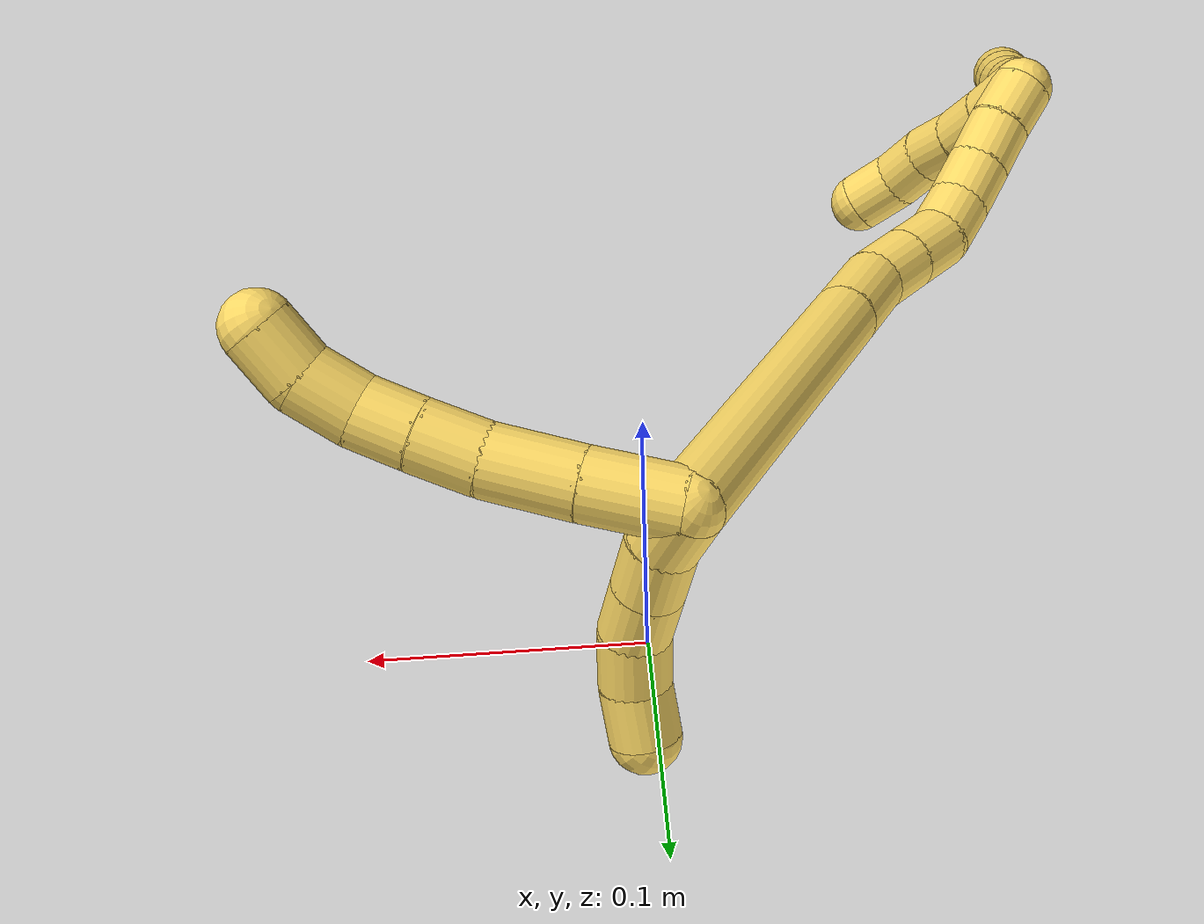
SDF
<sdf version="1.7">
 <world name="default">
  <model name="5">
   <static>0</static>
   <link name="5">
    <collision name="collision-cylinder-e_1_2_8">
     <pose>0.013615 0.005097 -0.008481 -2.60042 0.942341 -2.14438</pose>
     <geometry><cylinder><radius>0.0125</radius><length>0.033662</length></cylinder></geometry>
     <surface>
      <friction><ode><mu>1.16</mu><mu2>1.16</mu2><slip1>0</slip1><slip2>0</slip2></ode></friction>
      <contact><ode><kp>1e+06</kp><kd>1</kd><max_vel>0</max_vel><min_depth>0.001</min_depth></ode></contact>
     </surface>
    </collision>
    <visual name="visual-cylinder-e_1_2_8">
     <pose>0.013615 0.005097 -0.008481 -2.60042 0.942341 -2.14438</pose>
     <geometry><cylinder><radius>0.0125</radius><length>0.033662</length></cylinder></geometry>
     <material><ambient>1 0.858824 0.4 1</ambient></material>
    </visual>
    <collision name="collision-cylinder-e_2_8_9">
     <pose>0.040364 0.01455 -0.024837 -2.63635 0.970062 -2.23068</pose>
     <geometry><cylinder><radius>0.0125</radius><length>0.031841</length></cylinder></geometry>
     <surface>
      <friction><ode><mu>1.16</mu><mu2>1.16</mu2><slip1>0</slip1><slip2>0</slip2></ode></friction>
      <contact><ode><kp>1e+06</kp><kd>1</kd><max_vel>0</max_vel><min_depth>0.001</min_depth></ode></contact>
     </surface>
    </collision>
    <visual name="visual-cylinder-e_2_8_9">
     <pose>0.040364 0.01455 -0.024837 -2.63635 0.970062 -2.23068</pose>
     <geometry><cylinder><radius>0.0125</radius><length>0.031841</length></cylinder></geometry>
     <material><ambient>1 0.858824 0.4 1</ambient></material>
    </visual>
    <collision name="collision-cylinder-e_3_9_10">
     <pose>0.063683 0.021573 -0.037156 -2.60109 1.10003 -2.29285</pose>
     <geometry><cylinder><radius>0.0125</radius><length>0.022859</length></cylinder></geometry>
     <surface>
      <friction><ode><mu>1.16</mu><mu2>1.16</mu2><slip1>0</slip1><slip2>0</slip2></ode></friction>
      <contact><ode><kp>1e+06</kp><kd>1</kd><max_vel>0</max_vel><min_depth>0.001</min_depth></ode></contact>
     </surface>
    </collision>
    <visual name="visual-cylinder-e_3_9_10">
     <pose>0.063683 0.021573 -0.037156 -2.60109 1.10003 -2.29285</pose>
     <geometry><cylinder><radius>0.0125</radius><length>0.022859</length></cylinder></geometry>
     <material><ambient>1 0.858824 0.4 1</ambient></material>
    </visual>
    <collision name="collision-cylinder-e_4_10_11">
     <pose>0.08298 0.026187 -0.045631 -2.69162 1.11422 -2.43743</pose>
     <geometry><cylinder><radius>0.0125</radius><length>0.020302</length></cylinder></geometry>
     <surface>
      <friction><ode><mu>1.16</mu><mu2>1.16</mu2><slip1>0</slip1><slip2>0</slip2></ode></friction>
      <contact><ode><kp>1e+06</kp><kd>1</kd><max_vel>0</max_vel><min_depth>0.001</min_depth></ode></contact>
     </surface>
    </collision>
    <visual name="visual-cylinder-e_4_10_11">
     <pose>0.08298 0.026187 -0.045631 -2.69162 1.11422 -2.43743</pose>
     <geometry><cylinder><radius>0.0125</radius><length>0.020302</length></cylinder></geometry>
     <material><ambient>1 0.858824 0.4 1</ambient></material>
    </visual>
    <collision name="collision-cylinder-e_5_11_12">
     <pose>0.102258 0.030407 -0.051074 -2.12698 1.31337 -1.89209</pose>
     <geometry><cylinder><radius>0.0125</radius><length>0.021027</length></cylinder></geometry>
     <surface>
      <friction><ode><mu>1.16</mu><mu2>1.16</mu2><slip1>0</slip1><slip2>0</slip2></ode></friction>
      <contact><ode><kp>1e+06</kp><kd>1</kd><max_vel>0</max_vel><min_depth>0.001</min_depth></ode></contact>
     </surface>
    </collision>
    <visual name="visual-cylinder-e_5_11_12">
     <pose>0.102258 0.030407 -0.051074 -2.12698 1.31337 -1.89209</pose>
     <geometry><cylinder><radius>0.0125</radius><length>0.021027</length></cylinder></geometry>
     <material><ambient>1 0.858824 0.4 1</ambient></material>
    </visual>
    <collision name="collision-cylinder-e_6_12_6">
     <pose>0.122509 0.032649 -0.051286 0.026008 1.45213 0.023091</pose>
     <geometry><cylinder><radius>0.0125</radius><length>0.020309</length></cylinder></geometry>
     <surface>
      <friction><ode><mu>1.16</mu><mu2>1.16</mu2><slip1>0</slip1><slip2>0</slip2></ode></friction>
      <contact><ode><kp>1e+06</kp><kd>1</kd><max_vel>0</max_vel><min_depth>0.001</min_depth></ode></contact>
     </surface>
    </collision>
    <visual name="visual-cylinder-e_6_12_6">
     <pose>0.122509 0.032649 -0.051286 0.026008 1.45213 0.023091</pose>
     <geometry><cylinder><radius>0.0125</radius><length>0.020309</length></cylinder></geometry>
     <material><ambient>1 0.858824 0.4 1</ambient></material>
    </visual>
    <collision name="collision-cylinder-e_1_2_13">
     <pose>-0.002125 0.001289 -0.009686 -3.00926 -0.214135 2.03664</pose>
     <geometry><cylinder><radius>0.0125</radius><length>0.02</length></cylinder></geometry>
     <surface>
      <friction><ode><mu>1.16</mu><mu2>1.16</mu2><slip1>0</slip1><slip2>0</slip2></ode></friction>
      <contact><ode><kp>1e+06</kp><kd>1</kd><max_vel>0</max_vel><min_depth>0.001</min_depth></ode></contact>
     </surface>
    </collision>
    <visual name="visual-cylinder-e_1_2_13">
     <pose>-0.002125 0.001289 -0.009686 -3.00926 -0.214135 2.03664</pose>
     <geometry><cylinder><radius>0.0125</radius><length>0.02</length></cylinder></geometry>
     <material><ambient>1 0.858824 0.4 1</ambient></material>
    </visual>
    <collision name="collision-cylinder-e_2_13_14">
     <pose>-0.008573 0.004261 -0.028231 -2.95391 -0.446997 2.35643</pose>
     <geometry><cylinder><radius>0.0125</radius><length>0.02</length></cylinder></geometry>
     <surface>
      <friction><ode><mu>1.16</mu><mu2>1.16</mu2><slip1>0</slip1><slip2>0</slip2></ode></friction>
      <contact><ode><kp>1e+06</kp><kd>1</kd><max_vel>0</max_vel><min_depth>0.001</min_depth></ode></contact>
     </surface>
    </collision>
    <visual name="visual-cylinder-e_2_13_14">
     <pose>-0.008573 0.004261 -0.028231 -2.95391 -0.446997 2.35643</pose>
     <geometry><cylinder><radius>0.0125</radius><length>0.02</length></cylinder></geometry>
     <material><ambient>1 0.858824 0.4 1</ambient></material>
    </visual>
    <collision name="collision-cylinder-e_3_14_15">
     <pose>-0.017219 0.007628 -0.045949 -2.95368 -0.447158 2.35581</pose>
     <geometry><cylinder><radius>0.0125</radius><length>0.02</length></cylinder></geometry>
     <surface>
      <friction><ode><mu>1.16</mu><mu2>1.16</mu2><slip1>0</slip1><slip2>0</slip2></ode></friction>
      <contact><ode><kp>1e+06</kp><kd>1</kd><max_vel>0</max_vel><min_depth>0.001</min_depth></ode></contact>
     </surface>
    </collision>
    <visual name="visual-cylinder-e_3_14_15">
     <pose>-0.017219 0.007628 -0.045949 -2.95368 -0.447158 2.35581</pose>
     <geometry><cylinder><radius>0.0125</radius><length>0.02</length></cylinder></geometry>
     <material><ambient>1 0.858824 0.4 1</ambient></material>
    </visual>
    <collision name="collision-cylinder-e_4_15_16">
     <pose>-0.028279 0.01135 -0.061911 -2.86228 -0.739054 2.4453</pose>
     <geometry><cylinder><radius>0.0125</radius><length>0.02</length></cylinder></geometry>
     <surface>
      <friction><ode><mu>1.16</mu><mu2>1.16</mu2><slip1>0</slip1><slip2>0</slip2></ode></friction>
      <contact><ode><kp>1e+06</kp><kd>1</kd><max_vel>0</max_vel><min_depth>0.001</min_depth></ode></contact>
     </surface>
    </collision>
    <visual name="visual-cylinder-e_4_15_16">
     <pose>-0.028279 0.01135 -0.061911 -2.86228 -0.739054 2.4453</pose>
     <geometry><cylinder><radius>0.0125</radius><length>0.02</length></cylinder></geometry>
     <material><ambient>1 0.858824 0.4 1</ambient></material>
    </visual>
    <collision name="collision-cylinder-e_5_16_5">
     <pose>-0.043136 0.016045 -0.074212 -2.66892 -0.947649 2.26342</pose>
     <geometry><cylinder><radius>0.0125</radius><length>0.02</length></cylinder></geometry>
     <surface>
      <friction><ode><mu>1.16</mu><mu2>1.16</mu2><slip1>0</slip1><slip2>0</slip2></ode></friction>
      <contact><ode><kp>1e+06</kp><kd>1</kd><max_vel>0</max_vel><min_depth>0.001</min_depth></ode></contact>
     </surface>
    </collision>
    <visual name="visual-cylinder-e_5_16_5">
     <pose>-0.043136 0.016045 -0.074212 -2.66892 -0.947649 2.26342</pose>
     <geometry><cylinder><radius>0.0125</radius><length>0.02</length></cylinder></geometry>
     <material><ambient>1 0.858824 0.4 1</ambient></material>
    </visual>
    <collision name="collision-cylinder-e_1_2_17">
     <pose>-0.002019 -0.069784 -0.015676 1.79177 -0.028226 -0.035268</pose>
     <geometry><cylinder><radius>0.0125</radius><length>0.143104</length></cylinder></geometry>
     <surface>
      <friction><ode><mu>1.16</mu><mu2>1.16</mu2><slip1>0</slip1><slip2>0</slip2></ode></friction>
      <contact><ode><kp>1e+06</kp><kd>1</kd><max_vel>0</max_vel><min_depth>0.001</min_depth></ode></contact>
     </surface>
    </collision>
    <visual name="visual-cylinder-e_1_2_17">
     <pose>-0.002019 -0.069784 -0.015676 1.79177 -0.028226 -0.035268</pose>
     <geometry><cylinder><radius>0.0125</radius><length>0.143104</length></cylinder></geometry>
     <material><ambient>1 0.858824 0.4 1</ambient></material>
    </visual>
    <collision name="collision-cylinder-e_2_17_18">
     <pose>-0.004447 -0.15558 -0.034984 1.79385 -0.024872 -0.031144</pose>
     <geometry><cylinder><radius>0.0125</radius><length>0.032845</length></cylinder></geometry>
     <surface>
      <friction><ode><mu>1.16</mu><mu2>1.16</mu2><slip1>0</slip1><slip2>0</slip2></ode></friction>
      <contact><ode><kp>1e+06</kp><kd>1</kd><max_vel>0</max_vel><min_depth>0.001</min_depth></ode></contact>
     </surface>
    </collision>
    <visual name="visual-cylinder-e_2_17_18">
     <pose>-0.004447 -0.15558 -0.034984 1.79385 -0.024872 -0.031144</pose>
     <geometry><cylinder><radius>0.0125</radius><length>0.032845</length></cylinder></geometry>
     <material><ambient>1 0.858824 0.4 1</ambient></material>
    </visual>
    <collision name="collision-cylinder-e_3_18_19">
     <pose>-0.006855 -0.1823 -0.038158 1.52804 -0.184376 -0.176697</pose>
     <geometry><cylinder><radius>0.0125</radius><length>0.021809</length></cylinder></geometry>
     <surface>
      <friction><ode><mu>1.16</mu><mu2>1.16</mu2><slip1>0</slip1><slip2>0</slip2></ode></friction>
      <contact><ode><kp>1e+06</kp><kd>1</kd><max_vel>0</max_vel><min_depth>0.001</min_depth></ode></contact>
     </surface>
    </collision>
    <visual name="visual-cylinder-e_3_18_19">
     <pose>-0.006855 -0.1823 -0.038158 1.52804 -0.184376 -0.176697</pose>
     <geometry><cylinder><radius>0.0125</radius><length>0.021809</length></cylinder></geometry>
     <material><ambient>1 0.858824 0.4 1</ambient></material>
    </visual>
    <collision name="collision-cylinder-e_4_19_20">
     <pose>-0.010948 -0.203792 -0.037155 1.52033 -0.191576 -0.182197</pose>
     <geometry><cylinder><radius>0.0125</radius><length>0.021994</length></cylinder></geometry>
     <surface>
      <friction><ode><mu>1.16</mu><mu2>1.16</mu2><slip1>0</slip1><slip2>0</slip2></ode></friction>
      <contact><ode><kp>1e+06</kp><kd>1</kd><max_vel>0</max_vel><min_depth>0.001</min_depth></ode></contact>
     </surface>
    </collision>
    <visual name="visual-cylinder-e_4_19_20">
     <pose>-0.010948 -0.203792 -0.037155 1.52033 -0.191576 -0.182197</pose>
     <geometry><cylinder><radius>0.0125</radius><length>0.021994</length></cylinder></geometry>
     <material><ambient>1 0.858824 0.4 1</ambient></material>
    </visual>
    <collision name="collision-cylinder-e_5_20_21">
     <pose>-0.011693 -0.224551 -0.035617 1.47153 0.133675 0.121056</pose>
     <geometry><cylinder><radius>0.0125</radius><length>0.020232</length></cylinder></geometry>
     <surface>
      <friction><ode><mu>1.16</mu><mu2>1.16</mu2><slip1>0</slip1><slip2>0</slip2></ode></friction>
      <contact><ode><kp>1e+06</kp><kd>1</kd><max_vel>0</max_vel><min_depth>0.001</min_depth></ode></contact>
     </surface>
    </collision>
    <visual name="visual-cylinder-e_5_20_21">
     <pose>-0.011693 -0.224551 -0.035617 1.47153 0.133675 0.121056</pose>
     <geometry><cylinder><radius>0.0125</radius><length>0.020232</length></cylinder></geometry>
     <material><ambient>1 0.858824 0.4 1</ambient></material>
    </visual>
    <collision name="collision-cylinder-e_6_21_22">
     <pose>-0.007988 -0.243674 -0.031322 1.22452 0.237821 0.167417</pose>
     <geometry><cylinder><radius>0.0125</radius><length>0.020012</length></cylinder></geometry>
     <surface>
      <friction><ode><mu>1.16</mu><mu2>1.16</mu2><slip1>0</slip1><slip2>0</slip2></ode></friction>
      <contact><ode><kp>1e+06</kp><kd>1</kd><max_vel>0</max_vel><min_depth>0.001</min_depth></ode></contact>
     </surface>
    </collision>
    <visual name="visual-cylinder-e_6_21_22">
     <pose>-0.007988 -0.243674 -0.031322 1.22452 0.237821 0.167417</pose>
     <geometry><cylinder><radius>0.0125</radius><length>0.020012</length></cylinder></geometry>
     <material><ambient>1 0.858824 0.4 1</ambient></material>
    </visual>
    <collision name="collision-cylinder-e_7_22_23">
     <pose>-0.003012 -0.261739 -0.02433 1.17826 0.264901 0.177606</pose>
     <geometry><cylinder><radius>0.0125</radius><length>0.020002</length></cylinder></geometry>
     <surface>
      <friction><ode><mu>1.16</mu><mu2>1.16</mu2><slip1>0</slip1><slip2>0</slip2></ode></friction>
      <contact><ode><kp>1e+06</kp><kd>1</kd><max_vel>0</max_vel><min_depth>0.001</min_depth></ode></contact>
     </surface>
    </collision>
    <visual name="visual-cylinder-e_7_22_23">
     <pose>-0.003012 -0.261739 -0.02433 1.17826 0.264901 0.177606</pose>
     <geometry><cylinder><radius>0.0125</radius><length>0.020002</length></cylinder></geometry>
     <material><ambient>1 0.858824 0.4 1</ambient></material>
    </visual>
    <collision name="collision-cylinder-e_8_23_1">
     <pose>0.001535 -0.279805 -0.017085 1.20033 0.194087 0.133051</pose>
     <geometry><cylinder><radius>0.0125</radius><length>0.020002</length></cylinder></geometry>
     <surface>
      <friction><ode><mu>1.16</mu><mu2>1.16</mu2><slip1>0</slip1><slip2>0</slip2></ode></friction>
      <contact><ode><kp>1e+06</kp><kd>1</kd><max_vel>0</max_vel><min_depth>0.001</min_depth></ode></contact>
     </surface>
    </collision>
    <visual name="visual-cylinder-e_8_23_1">
     <pose>0.001535 -0.279805 -0.017085 1.20033 0.194087 0.133051</pose>
     <geometry><cylinder><radius>0.0125</radius><length>0.020002</length></cylinder></geometry>
     <material><ambient>1 0.858824 0.4 1</ambient></material>
    </visual>
    <collision name="collision-cylinder-e_1_1_24">
     <pose>0.003704 -0.296478 -0.020113 2.28932 0.024041 0.052949</pose>
     <geometry><cylinder><radius>0.0125</radius><length>0.02</length></cylinder></geometry>
     <surface>
      <friction><ode><mu>1.16</mu><mu2>1.16</mu2><slip1>0</slip1><slip2>0</slip2></ode></friction>
      <contact><ode><kp>1e+06</kp><kd>1</kd><max_vel>0</max_vel><min_depth>0.001</min_depth></ode></contact>
     </surface>
    </collision>
    <visual name="visual-cylinder-e_1_1_24">
     <pose>0.003704 -0.296478 -0.020113 2.28932 0.024041 0.052949</pose>
     <geometry><cylinder><radius>0.0125</radius><length>0.02</length></cylinder></geometry>
     <material><ambient>1 0.858824 0.4 1</ambient></material>
    </visual>
    <collision name="collision-cylinder-e_2_24_25">
     <pose>0.004573 -0.311657 -0.033099 2.26772 0.062838 0.134387</pose>
     <geometry><cylinder><radius>0.0125</radius><length>0.02</length></cylinder></geometry>
     <surface>
      <friction><ode><mu>1.16</mu><mu2>1.16</mu2><slip1>0</slip1><slip2>0</slip2></ode></friction>
      <contact><ode><kp>1e+06</kp><kd>1</kd><max_vel>0</max_vel><min_depth>0.001</min_depth></ode></contact>
     </surface>
    </collision>
    <visual name="visual-cylinder-e_2_24_25">
     <pose>0.004573 -0.311657 -0.033099 2.26772 0.062838 0.134387</pose>
     <geometry><cylinder><radius>0.0125</radius><length>0.02</length></cylinder></geometry>
     <material><ambient>1 0.858824 0.4 1</ambient></material>
    </visual>
    <collision name="collision-cylinder-e_3_25_26">
     <pose>0.005847 -0.32752 -0.045177 2.1753 0.064704 0.123221</pose>
     <geometry><cylinder><radius>0.0125</radius><length>0.02</length></cylinder></geometry>
     <surface>
      <friction><ode><mu>1.16</mu><mu2>1.16</mu2><slip1>0</slip1><slip2>0</slip2></ode></friction>
      <contact><ode><kp>1e+06</kp><kd>1</kd><max_vel>0</max_vel><min_depth>0.001</min_depth></ode></contact>
     </surface>
    </collision>
    <visual name="visual-cylinder-e_3_25_26">
     <pose>0.005847 -0.32752 -0.045177 2.1753 0.064704 0.123221</pose>
     <geometry><cylinder><radius>0.0125</radius><length>0.02</length></cylinder></geometry>
     <material><ambient>1 0.858824 0.4 1</ambient></material>
    </visual>
    <collision name="collision-cylinder-e_4_26_27">
     <pose>0.006812 -0.343879 -0.056637 2.18843 0.031833 0.061645</pose>
     <geometry><cylinder><radius>0.0125</radius><length>0.02</length></cylinder></geometry>
     <surface>
      <friction><ode><mu>1.16</mu><mu2>1.16</mu2><slip1>0</slip1><slip2>0</slip2></ode></friction>
      <contact><ode><kp>1e+06</kp><kd>1</kd><max_vel>0</max_vel><min_depth>0.001</min_depth></ode></contact>
     </surface>
    </collision>
    <visual name="visual-cylinder-e_4_26_27">
     <pose>0.006812 -0.343879 -0.056637 2.18843 0.031833 0.061645</pose>
     <geometry><cylinder><radius>0.0125</radius><length>0.02</length></cylinder></geometry>
     <material><ambient>1 0.858824 0.4 1</ambient></material>
    </visual>
    <collision name="collision-cylinder-e_5_27_4">
     <pose>0.005548 -0.359716 -0.06862 2.24903 -0.158884 -0.32974</pose>
     <geometry><cylinder><radius>0.0125</radius><length>0.02</length></cylinder></geometry>
     <surface>
      <friction><ode><mu>1.16</mu><mu2>1.16</mu2><slip1>0</slip1><slip2>0</slip2></ode></friction>
      <contact><ode><kp>1e+06</kp><kd>1</kd><max_vel>0</max_vel><min_depth>0.001</min_depth></ode></contact>
     </surface>
    </collision>
    <visual name="visual-cylinder-e_5_27_4">
     <pose>0.005548 -0.359716 -0.06862 2.24903 -0.158884 -0.32974</pose>
     <geometry><cylinder><radius>0.0125</radius><length>0.02</length></cylinder></geometry>
     <material><ambient>1 0.858824 0.4 1</ambient></material>
    </visual>
    <collision name="collision-cylinder-e_1_1_28">
     <pose>0.003535 -0.28842 -0.023517 -3.0883 0.007093 -0.264572</pose>
     <geometry><cylinder><radius>0.0125</radius><length>0.02</length></cylinder></geometry>
     <surface>
      <friction><ode><mu>1.16</mu><mu2>1.16</mu2><slip1>0</slip1><slip2>0</slip2></ode></friction>
      <contact><ode><kp>1e+06</kp><kd>1</kd><max_vel>0</max_vel><min_depth>0.001</min_depth></ode></contact>
     </surface>
    </collision>
    <visual name="visual-cylinder-e_1_1_28">
     <pose>0.003535 -0.28842 -0.023517 -3.0883 0.007093 -0.264572</pose>
     <geometry><cylinder><radius>0.0125</radius><length>0.02</length></cylinder></geometry>
     <material><ambient>1 0.858824 0.4 1</ambient></material>
    </visual>
    <collision name="collision-cylinder-e_2_28_29">
     <pose>0.003981 -0.28801 -0.043495 3.12929 0.03751 2.50796</pose>
     <geometry><cylinder><radius>0.0125</radius><length>0.02</length></cylinder></geometry>
     <surface>
      <friction><ode><mu>1.16</mu><mu2>1.16</mu2><slip1>0</slip1><slip2>0</slip2></ode></friction>
      <contact><ode><kp>1e+06</kp><kd>1</kd><max_vel>0</max_vel><min_depth>0.001</min_depth></ode></contact>
     </surface>
    </collision>
    <visual name="visual-cylinder-e_2_28_29">
     <pose>0.003981 -0.28801 -0.043495 3.12929 0.03751 2.50796</pose>
     <geometry><cylinder><radius>0.0125</radius><length>0.02</length></cylinder></geometry>
     <material><ambient>1 0.858824 0.4 1</ambient></material>
    </visual>
    <collision name="collision-cylinder-e_3_29_30">
     <pose>0.005874 -0.288787 -0.06335 3.07531 0.152408 2.32229</pose>
     <geometry><cylinder><radius>0.0125</radius><length>0.02</length></cylinder></geometry>
     <surface>
      <friction><ode><mu>1.16</mu><mu2>1.16</mu2><slip1>0</slip1><slip2>0</slip2></ode></friction>
      <contact><ode><kp>1e+06</kp><kd>1</kd><max_vel>0</max_vel><min_depth>0.001</min_depth></ode></contact>
     </surface>
    </collision>
    <visual name="visual-cylinder-e_3_29_30">
     <pose>0.005874 -0.288787 -0.06335 3.07531 0.152408 2.32229</pose>
     <geometry><cylinder><radius>0.0125</radius><length>0.02</length></cylinder></geometry>
     <material><ambient>1 0.858824 0.4 1</ambient></material>
    </visual>
    <collision name="collision-cylinder-e_4_30_31">
     <pose>0.007693 -0.288231 -0.083134 -3.0201 0.030048 -0.484396</pose>
     <geometry><cylinder><radius>0.0125</radius><length>0.02</length></cylinder></geometry>
     <surface>
      <friction><ode><mu>1.16</mu><mu2>1.16</mu2><slip1>0</slip1><slip2>0</slip2></ode></friction>
      <contact><ode><kp>1e+06</kp><kd>1</kd><max_vel>0</max_vel><min_depth>0.001</min_depth></ode></contact>
     </surface>
    </collision>
    <visual name="visual-cylinder-e_4_30_31">
     <pose>0.007693 -0.288231 -0.083134 -3.0201 0.030048 -0.484396</pose>
     <geometry><cylinder><radius>0.0125</radius><length>0.02</length></cylinder></geometry>
     <material><ambient>1 0.858824 0.4 1</ambient></material>
    </visual>
    <collision name="collision-cylinder-e_5_31_3">
     <pose>0.009794 -0.283016 -0.102041 -2.72244 0.181116 -0.807003</pose>
     <geometry><cylinder><radius>0.0125</radius><length>0.02</length></cylinder></geometry>
     <surface>
      <friction><ode><mu>1.16</mu><mu2>1.16</mu2><slip1>0</slip1><slip2>0</slip2></ode></friction>
      <contact><ode><kp>1e+06</kp><kd>1</kd><max_vel>0</max_vel><min_depth>0.001</min_depth></ode></contact>
     </surface>
    </collision>
    <visual name="visual-cylinder-e_5_31_3">
     <pose>0.009794 -0.283016 -0.102041 -2.72244 0.181116 -0.807003</pose>
     <geometry><cylinder><radius>0.0125</radius><length>0.02</length></cylinder></geometry>
     <material><ambient>1 0.858824 0.4 1</ambient></material>
    </visual>
    <collision name="collision-sphere-3">
     <pose>0.011596 -0.279013 -0.111026 0 -0 0</pose>
     <geometry><sphere><radius>0.0125</radius></sphere></geometry>
     <surface>
      <friction><ode><mu>1.16</mu><mu2>1.16</mu2><slip1>0</slip1><slip2>0</slip2></ode></friction>
      <contact><ode><kp>1e+06</kp><kd>1</kd><max_vel>0</max_vel><min_depth>0.001</min_depth></ode></contact>
     </surface>
    </collision>
    <visual name="visual-sphere-3">
     <pose>0.011596 -0.279013 -0.111026 0 -0 0</pose>
     <geometry><sphere><radius>0.0125</radius></sphere></geometry>
     <material><ambient>1 0.858824 0.4 1</ambient></material>
    </visual>
    <collision name="collision-sphere-31">
     <pose>0.007993 -0.287019 -0.093056 0 -0 0</pose>
     <geometry><sphere><radius>0.0125</radius></sphere></geometry>
     <surface>
      <friction><ode><mu>1.16</mu><mu2>1.16</mu2><slip1>0</slip1><slip2>0</slip2></ode></friction>
      <contact><ode><kp>1e+06</kp><kd>1</kd><max_vel>0</max_vel><min_depth>0.001</min_depth></ode></contact>
     </surface>
    </collision>
    <visual name="visual-sphere-31">
     <pose>0.007993 -0.287019 -0.093056 0 -0 0</pose>
     <geometry><sphere><radius>0.0125</radius></sphere></geometry>
     <material><ambient>1 0.858824 0.4 1</ambient></material>
    </visual>
    <collision name="collision-sphere-30">
     <pose>0.007392 -0.289442 -0.073212 0 -0 0</pose>
     <geometry><sphere><radius>0.0125</radius></sphere></geometry>
     <surface>
      <friction><ode><mu>1.16</mu><mu2>1.16</mu2><slip1>0</slip1><slip2>0</slip2></ode></friction>
      <contact><ode><kp>1e+06</kp><kd>1</kd><max_vel>0</max_vel><min_depth>0.001</min_depth></ode></contact>
     </surface>
    </collision>
    <visual name="visual-sphere-30">
     <pose>0.007392 -0.289442 -0.073212 0 -0 0</pose>
     <geometry><sphere><radius>0.0125</radius></sphere></geometry>
     <material><ambient>1 0.858824 0.4 1</ambient></material>
    </visual>
    <collision name="collision-sphere-29">
     <pose>0.004356 -0.288133 -0.053487 0 -0 0</pose>
     <geometry><sphere><radius>0.0125</radius></sphere></geometry>
     <surface>
      <friction><ode><mu>1.16</mu><mu2>1.16</mu2><slip1>0</slip1><slip2>0</slip2></ode></friction>
      <contact><ode><kp>1e+06</kp><kd>1</kd><max_vel>0</max_vel><min_depth>0.001</min_depth></ode></contact>
     </surface>
    </collision>
    <visual name="visual-sphere-29">
     <pose>0.004356 -0.288133 -0.053487 0 -0 0</pose>
     <geometry><sphere><radius>0.0125</radius></sphere></geometry>
     <material><ambient>1 0.858824 0.4 1</ambient></material>
    </visual>
    <collision name="collision-sphere-28">
     <pose>0.003606 -0.287887 -0.033503 0 -0 0</pose>
     <geometry><sphere><radius>0.0125</radius></sphere></geometry>
     <surface>
      <friction><ode><mu>1.16</mu><mu2>1.16</mu2><slip1>0</slip1><slip2>0</slip2></ode></friction>
      <contact><ode><kp>1e+06</kp><kd>1</kd><max_vel>0</max_vel><min_depth>0.001</min_depth></ode></contact>
     </surface>
    </collision>
    <visual name="visual-sphere-28">
     <pose>0.003606 -0.287887 -0.033503 0 -0 0</pose>
     <geometry><sphere><radius>0.0125</radius></sphere></geometry>
     <material><ambient>1 0.858824 0.4 1</ambient></material>
    </visual>
    <collision name="collision-sphere-4">
     <pose>0.003966 -0.367405 -0.074815 0 -0 0</pose>
     <geometry><sphere><radius>0.0125</radius></sphere></geometry>
     <surface>
      <friction><ode><mu>1.16</mu><mu2>1.16</mu2><slip1>0</slip1><slip2>0</slip2></ode></friction>
      <contact><ode><kp>1e+06</kp><kd>1</kd><max_vel>0</max_vel><min_depth>0.001</min_depth></ode></contact>
     </surface>
    </collision>
    <visual name="visual-sphere-4">
     <pose>0.003966 -0.367405 -0.074815 0 -0 0</pose>
     <geometry><sphere><radius>0.0125</radius></sphere></geometry>
     <material><ambient>1 0.858824 0.4 1</ambient></material>
    </visual>
    <collision name="collision-sphere-27">
     <pose>0.00713 -0.352028 -0.062425 0 -0 0</pose>
     <geometry><sphere><radius>0.0125</radius></sphere></geometry>
     <surface>
      <friction><ode><mu>1.16</mu><mu2>1.16</mu2><slip1>0</slip1><slip2>0</slip2></ode></friction>
      <contact><ode><kp>1e+06</kp><kd>1</kd><max_vel>0</max_vel><min_depth>0.001</min_depth></ode></contact>
     </surface>
    </collision>
    <visual name="visual-sphere-27">
     <pose>0.00713 -0.352028 -0.062425 0 -0 0</pose>
     <geometry><sphere><radius>0.0125</radius></sphere></geometry>
     <material><ambient>1 0.858824 0.4 1</ambient></material>
    </visual>
    <collision name="collision-sphere-26">
     <pose>0.006494 -0.335731 -0.050849 0 -0 0</pose>
     <geometry><sphere><radius>0.0125</radius></sphere></geometry>
     <surface>
      <friction><ode><mu>1.16</mu><mu2>1.16</mu2><slip1>0</slip1><slip2>0</slip2></ode></friction>
      <contact><ode><kp>1e+06</kp><kd>1</kd><max_vel>0</max_vel><min_depth>0.001</min_depth></ode></contact>
     </surface>
    </collision>
    <visual name="visual-sphere-26">
     <pose>0.006494 -0.335731 -0.050849 0 -0 0</pose>
     <geometry><sphere><radius>0.0125</radius></sphere></geometry>
     <material><ambient>1 0.858824 0.4 1</ambient></material>
    </visual>
    <collision name="collision-sphere-25">
     <pose>0.005201 -0.31931 -0.039505 0 -0 0</pose>
     <geometry><sphere><radius>0.0125</radius></sphere></geometry>
     <surface>
      <friction><ode><mu>1.16</mu><mu2>1.16</mu2><slip1>0</slip1><slip2>0</slip2></ode></friction>
      <contact><ode><kp>1e+06</kp><kd>1</kd><max_vel>0</max_vel><min_depth>0.001</min_depth></ode></contact>
     </surface>
    </collision>
    <visual name="visual-sphere-25">
     <pose>0.005201 -0.31931 -0.039505 0 -0 0</pose>
     <geometry><sphere><radius>0.0125</radius></sphere></geometry>
     <material><ambient>1 0.858824 0.4 1</ambient></material>
    </visual>
    <collision name="collision-sphere-24">
     <pose>0.003945 -0.304003 -0.026693 0 -0 0</pose>
     <geometry><sphere><radius>0.0125</radius></sphere></geometry>
     <surface>
      <friction><ode><mu>1.16</mu><mu2>1.16</mu2><slip1>0</slip1><slip2>0</slip2></ode></friction>
      <contact><ode><kp>1e+06</kp><kd>1</kd><max_vel>0</max_vel><min_depth>0.001</min_depth></ode></contact>
     </surface>
    </collision>
    <visual name="visual-sphere-24">
     <pose>0.003945 -0.304003 -0.026693 0 -0 0</pose>
     <geometry><sphere><radius>0.0125</radius></sphere></geometry>
     <material><ambient>1 0.858824 0.4 1</ambient></material>
    </visual>
    <collision name="collision-sphere-1">
     <pose>0.003464 -0.288952 -0.013532 0 -0 0</pose>
     <geometry><sphere><radius>0.0125</radius></sphere></geometry>
     <surface>
      <friction><ode><mu>1.16</mu><mu2>1.16</mu2><slip1>0</slip1><slip2>0</slip2></ode></friction>
      <contact><ode><kp>1e+06</kp><kd>1</kd><max_vel>0</max_vel><min_depth>0.001</min_depth></ode></contact>
     </surface>
    </collision>
    <visual name="visual-sphere-1">
     <pose>0.003464 -0.288952 -0.013532 0 -0 0</pose>
     <geometry><sphere><radius>0.0125</radius></sphere></geometry>
     <material><ambient>1 0.858824 0.4 1</ambient></material>
    </visual>
    <collision name="collision-sphere-23">
     <pose>-0.000394 -0.270657 -0.020637 0 -0 0</pose>
     <geometry><sphere><radius>0.0125</radius></sphere></geometry>
     <surface>
      <friction><ode><mu>1.16</mu><mu2>1.16</mu2><slip1>0</slip1><slip2>0</slip2></ode></friction>
      <contact><ode><kp>1e+06</kp><kd>1</kd><max_vel>0</max_vel><min_depth>0.001</min_depth></ode></contact>
     </surface>
    </collision>
    <visual name="visual-sphere-23">
     <pose>-0.000394 -0.270657 -0.020637 0 -0 0</pose>
     <geometry><sphere><radius>0.0125</radius></sphere></geometry>
     <material><ambient>1 0.858824 0.4 1</ambient></material>
    </visual>
    <collision name="collision-sphere-22">
     <pose>-0.005631 -0.252821 -0.028022 0 -0 0</pose>
     <geometry><sphere><radius>0.0125</radius></sphere></geometry>
     <surface>
      <friction><ode><mu>1.16</mu><mu2>1.16</mu2><slip1>0</slip1><slip2>0</slip2></ode></friction>
      <contact><ode><kp>1e+06</kp><kd>1</kd><max_vel>0</max_vel><min_depth>0.001</min_depth></ode></contact>
     </surface>
    </collision>
    <visual name="visual-sphere-22">
     <pose>-0.005631 -0.252821 -0.028022 0 -0 0</pose>
     <geometry><sphere><radius>0.0125</radius></sphere></geometry>
     <material><ambient>1 0.858824 0.4 1</ambient></material>
    </visual>
    <collision name="collision-sphere-21">
     <pose>-0.010345 -0.234527 -0.034623 0 -0 0</pose>
     <geometry><sphere><radius>0.0125</radius></sphere></geometry>
     <surface>
      <friction><ode><mu>1.16</mu><mu2>1.16</mu2><slip1>0</slip1><slip2>0</slip2></ode></friction>
      <contact><ode><kp>1e+06</kp><kd>1</kd><max_vel>0</max_vel><min_depth>0.001</min_depth></ode></contact>
     </surface>
    </collision>
    <visual name="visual-sphere-21">
     <pose>-0.010345 -0.234527 -0.034623 0 -0 0</pose>
     <geometry><sphere><radius>0.0125</radius></sphere></geometry>
     <material><ambient>1 0.858824 0.4 1</ambient></material>
    </visual>
    <collision name="collision-sphere-12">
     <pose>0.112425 0.03268 -0.052488 0 -0 0</pose>
     <geometry><sphere><radius>0.0125</radius></sphere></geometry>
     <surface>
      <friction><ode><mu>1.16</mu><mu2>1.16</mu2><slip1>0</slip1><slip2>0</slip2></ode></friction>
      <contact><ode><kp>1e+06</kp><kd>1</kd><max_vel>0</max_vel><min_depth>0.001</min_depth></ode></contact>
     </surface>
    </collision>
    <visual name="visual-sphere-12">
     <pose>0.112425 0.03268 -0.052488 0 -0 0</pose>
     <geometry><sphere><radius>0.0125</radius></sphere></geometry>
     <material><ambient>1 0.858824 0.4 1</ambient></material>
    </visual>
    <collision name="collision-sphere-11">
     <pose>0.092092 0.028134 -0.049661 0 -0 0</pose>
     <geometry><sphere><radius>0.0125</radius></sphere></geometry>
     <surface>
      <friction><ode><mu>1.16</mu><mu2>1.16</mu2><slip1>0</slip1><slip2>0</slip2></ode></friction>
      <contact><ode><kp>1e+06</kp><kd>1</kd><max_vel>0</max_vel><min_depth>0.001</min_depth></ode></contact>
     </surface>
    </collision>
    <visual name="visual-sphere-11">
     <pose>0.092092 0.028134 -0.049661 0 -0 0</pose>
     <geometry><sphere><radius>0.0125</radius></sphere></geometry>
     <material><ambient>1 0.858824 0.4 1</ambient></material>
    </visual>
    <collision name="collision-sphere-10">
     <pose>0.073869 0.024241 -0.041601 0 -0 0</pose>
     <geometry><sphere><radius>0.0125</radius></sphere></geometry>
     <surface>
      <friction><ode><mu>1.16</mu><mu2>1.16</mu2><slip1>0</slip1><slip2>0</slip2></ode></friction>
      <contact><ode><kp>1e+06</kp><kd>1</kd><max_vel>0</max_vel><min_depth>0.001</min_depth></ode></contact>
     </surface>
    </collision>
    <visual name="visual-sphere-10">
     <pose>0.073869 0.024241 -0.041601 0 -0 0</pose>
     <geometry><sphere><radius>0.0125</radius></sphere></geometry>
     <material><ambient>1 0.858824 0.4 1</ambient></material>
    </visual>
    <collision name="collision-sphere-9">
     <pose>0.053497 0.018906 -0.032711 0 -0 0</pose>
     <geometry><sphere><radius>0.0125</radius></sphere></geometry>
     <surface>
      <friction><ode><mu>1.16</mu><mu2>1.16</mu2><slip1>0</slip1><slip2>0</slip2></ode></friction>
      <contact><ode><kp>1e+06</kp><kd>1</kd><max_vel>0</max_vel><min_depth>0.001</min_depth></ode></contact>
     </surface>
    </collision>
    <visual name="visual-sphere-9">
     <pose>0.053497 0.018906 -0.032711 0 -0 0</pose>
     <geometry><sphere><radius>0.0125</radius></sphere></geometry>
     <material><ambient>1 0.858824 0.4 1</ambient></material>
    </visual>
    <collision name="collision-sphere-2">
     <geometry><sphere><radius>0.0125</radius></sphere></geometry>
     <surface>
      <friction><ode><mu>1.16</mu><mu2>1.16</mu2><slip1>0</slip1><slip2>0</slip2></ode></friction>
      <contact><ode><kp>1e+06</kp><kd>1</kd><max_vel>0</max_vel><min_depth>0.001</min_depth></ode></contact>
     </surface>
    </collision>
    <visual name="visual-sphere-2">
     <geometry><sphere><radius>0.0125</radius></sphere></geometry>
     <material><ambient>1 0.858824 0.4 1</ambient></material>
    </visual>
    <collision name="collision-sphere-19">
     <pose>-0.008854 -0.19301 -0.037699 0 -0 0</pose>
     <geometry><sphere><radius>0.0125</radius></sphere></geometry>
     <surface>
      <friction><ode><mu>1.16</mu><mu2>1.16</mu2><slip1>0</slip1><slip2>0</slip2></ode></friction>
      <contact><ode><kp>1e+06</kp><kd>1</kd><max_vel>0</max_vel><min_depth>0.001</min_depth></ode></contact>
     </surface>
    </collision>
    <visual name="visual-sphere-19">
     <pose>-0.008854 -0.19301 -0.037699 0 -0 0</pose>
     <geometry><sphere><radius>0.0125</radius></sphere></geometry>
     <material><ambient>1 0.858824 0.4 1</ambient></material>
    </visual>
    <collision name="collision-sphere-8">
     <pose>0.027231 0.010194 -0.016962 0 -0 0</pose>
     <geometry><sphere><radius>0.0125</radius></sphere></geometry>
     <surface>
      <friction><ode><mu>1.16</mu><mu2>1.16</mu2><slip1>0</slip1><slip2>0</slip2></ode></friction>
      <contact><ode><kp>1e+06</kp><kd>1</kd><max_vel>0</max_vel><min_depth>0.001</min_depth></ode></contact>
     </surface>
    </collision>
    <visual name="visual-sphere-8">
     <pose>0.027231 0.010194 -0.016962 0 -0 0</pose>
     <geometry><sphere><radius>0.0125</radius></sphere></geometry>
     <material><ambient>1 0.858824 0.4 1</ambient></material>
    </visual>
    <collision name="collision-sphere-6">
     <pose>0.132592 0.032618 -0.050084 0 -0 0</pose>
     <geometry><sphere><radius>0.0125</radius></sphere></geometry>
     <surface>
      <friction><ode><mu>1.16</mu><mu2>1.16</mu2><slip1>0</slip1><slip2>0</slip2></ode></friction>
      <contact><ode><kp>1e+06</kp><kd>1</kd><max_vel>0</max_vel><min_depth>0.001</min_depth></ode></contact>
     </surface>
    </collision>
    <visual name="visual-sphere-6">
     <pose>0.132592 0.032618 -0.050084 0 -0 0</pose>
     <geometry><sphere><radius>0.0125</radius></sphere></geometry>
     <material><ambient>1 0.858824 0.4 1</ambient></material>
    </visual>
    <collision name="collision-sphere-13">
     <pose>-0.00425 0.002579 -0.019372 0 -0 0</pose>
     <geometry><sphere><radius>0.0125</radius></sphere></geometry>
     <surface>
      <friction><ode><mu>1.16</mu><mu2>1.16</mu2><slip1>0</slip1><slip2>0</slip2></ode></friction>
      <contact><ode><kp>1e+06</kp><kd>1</kd><max_vel>0</max_vel><min_depth>0.001</min_depth></ode></contact>
     </surface>
    </collision>
    <visual name="visual-sphere-13">
     <pose>-0.00425 0.002579 -0.019372 0 -0 0</pose>
     <geometry><sphere><radius>0.0125</radius></sphere></geometry>
     <material><ambient>1 0.858824 0.4 1</ambient></material>
    </visual>
    <collision name="collision-sphere-14">
     <pose>-0.012895 0.005944 -0.037091 0 -0 0</pose>
     <geometry><sphere><radius>0.0125</radius></sphere></geometry>
     <surface>
      <friction><ode><mu>1.16</mu><mu2>1.16</mu2><slip1>0</slip1><slip2>0</slip2></ode></friction>
      <contact><ode><kp>1e+06</kp><kd>1</kd><max_vel>0</max_vel><min_depth>0.001</min_depth></ode></contact>
     </surface>
    </collision>
    <visual name="visual-sphere-14">
     <pose>-0.012895 0.005944 -0.037091 0 -0 0</pose>
     <geometry><sphere><radius>0.0125</radius></sphere></geometry>
     <material><ambient>1 0.858824 0.4 1</ambient></material>
    </visual>
    <collision name="collision-sphere-15">
     <pose>-0.021543 0.009313 -0.054807 0 -0 0</pose>
     <geometry><sphere><radius>0.0125</radius></sphere></geometry>
     <surface>
      <friction><ode><mu>1.16</mu><mu2>1.16</mu2><slip1>0</slip1><slip2>0</slip2></ode></friction>
      <contact><ode><kp>1e+06</kp><kd>1</kd><max_vel>0</max_vel><min_depth>0.001</min_depth></ode></contact>
     </surface>
    </collision>
    <visual name="visual-sphere-15">
     <pose>-0.021543 0.009313 -0.054807 0 -0 0</pose>
     <geometry><sphere><radius>0.0125</radius></sphere></geometry>
     <material><ambient>1 0.858824 0.4 1</ambient></material>
    </visual>
    <collision name="collision-sphere-16">
     <pose>-0.035015 0.013388 -0.069016 0 -0 0</pose>
     <geometry><sphere><radius>0.0125</radius></sphere></geometry>
     <surface>
      <friction><ode><mu>1.16</mu><mu2>1.16</mu2><slip1>0</slip1><slip2>0</slip2></ode></friction>
      <contact><ode><kp>1e+06</kp><kd>1</kd><max_vel>0</max_vel><min_depth>0.001</min_depth></ode></contact>
     </surface>
    </collision>
    <visual name="visual-sphere-16">
     <pose>-0.035015 0.013388 -0.069016 0 -0 0</pose>
     <geometry><sphere><radius>0.0125</radius></sphere></geometry>
     <material><ambient>1 0.858824 0.4 1</ambient></material>
    </visual>
    <collision name="collision-sphere-5">
     <pose>-0.051256 0.018702 -0.079408 0 -0 0</pose>
     <geometry><sphere><radius>0.0125</radius></sphere></geometry>
     <surface>
      <friction><ode><mu>1.16</mu><mu2>1.16</mu2><slip1>0</slip1><slip2>0</slip2></ode></friction>
      <contact><ode><kp>1e+06</kp><kd>1</kd><max_vel>0</max_vel><min_depth>0.001</min_depth></ode></contact>
     </surface>
    </collision>
    <visual name="visual-sphere-5">
     <pose>-0.051256 0.018702 -0.079408 0 -0 0</pose>
     <geometry><sphere><radius>0.0125</radius></sphere></geometry>
     <material><ambient>1 0.858824 0.4 1</ambient></material>
    </visual>
    <collision name="collision-sphere-17">
     <pose>-0.004039 -0.139569 -0.031352 0 -0 0</pose>
     <geometry><sphere><radius>0.0125</radius></sphere></geometry>
     <surface>
      <friction><ode><mu>1.16</mu><mu2>1.16</mu2><slip1>0</slip1><slip2>0</slip2></ode></friction>
      <contact><ode><kp>1e+06</kp><kd>1</kd><max_vel>0</max_vel><min_depth>0.001</min_depth></ode></contact>
     </surface>
    </collision>
    <visual name="visual-sphere-17">
     <pose>-0.004039 -0.139569 -0.031352 0 -0 0</pose>
     <geometry><sphere><radius>0.0125</radius></sphere></geometry>
     <material><ambient>1 0.858824 0.4 1</ambient></material>
    </visual>
    <collision name="collision-sphere-18">
     <pose>-0.004855 -0.17159 -0.038616 0 -0 0</pose>
     <geometry><sphere><radius>0.0125</radius></sphere></geometry>
     <surface>
      <friction><ode><mu>1.16</mu><mu2>1.16</mu2><slip1>0</slip1><slip2>0</slip2></ode></friction>
      <contact><ode><kp>1e+06</kp><kd>1</kd><max_vel>0</max_vel><min_depth>0.001</min_depth></ode></contact>
     </surface>
    </collision>
    <visual name="visual-sphere-18">
     <pose>-0.004855 -0.17159 -0.038616 0 -0 0</pose>
     <geometry><sphere><radius>0.0125</radius></sphere></geometry>
     <material><ambient>1 0.858824 0.4 1</ambient></material>
    </visual>
    <collision name="collision-sphere-20">
     <pose>-0.013042 -0.214574 -0.03661 0 -0 0</pose>
     <geometry><sphere><radius>0.0125</radius></sphere></geometry>
     <surface>
      <friction><ode><mu>1.16</mu><mu2>1.16</mu2><slip1>0</slip1><slip2>0</slip2></ode></friction>
      <contact><ode><kp>1e+06</kp><kd>1</kd><max_vel>0</max_vel><min_depth>0.001</min_depth></ode></contact>
     </surface>
    </collision>
    <visual name="visual-sphere-20">
     <pose>-0.013042 -0.214574 -0.03661 0 -0 0</pose>
     <geometry><sphere><radius>0.0125</radius></sphere></geometry>
     <material><ambient>1 0.858824 0.4 1</ambient></material>
    </visual>
    <inertial>
     <pose>0.009909 -0.135395 -0.036491 0 -0 0</pose>
     <mass>0.75</mass>
     <inertia>
      <ixx>0.000261</ixx>
      <ixy>0</ixy>
      <ixz>0</ixz>
      <iyy>-7.4e-05</iyy>
      <iyz>0</iyz>
      <izz>0.00023</izz>
     </inertia>
    </inertial>
   </link>
   <pose>-0.010552 0.052486 0.106497 -0.080909 -0.674129 -0.568119</pose>
  </model>
 </world>
</sdf>
